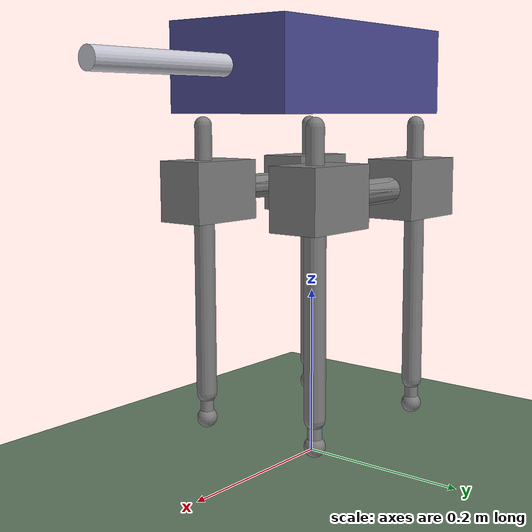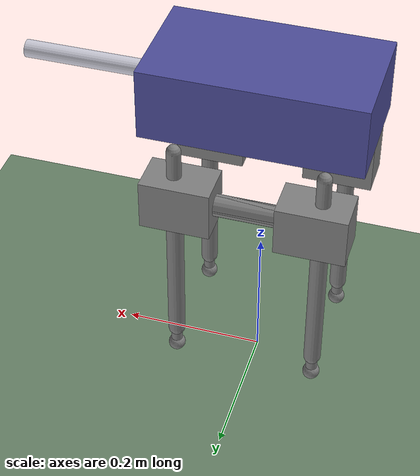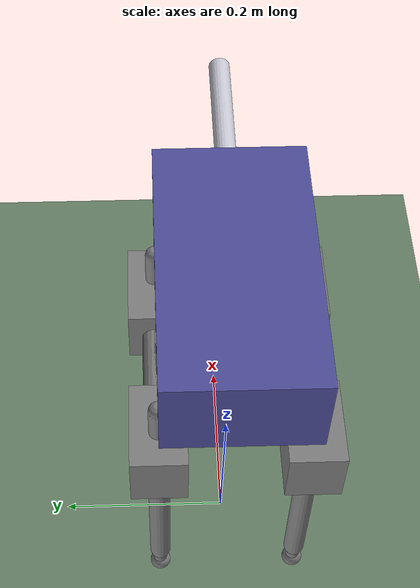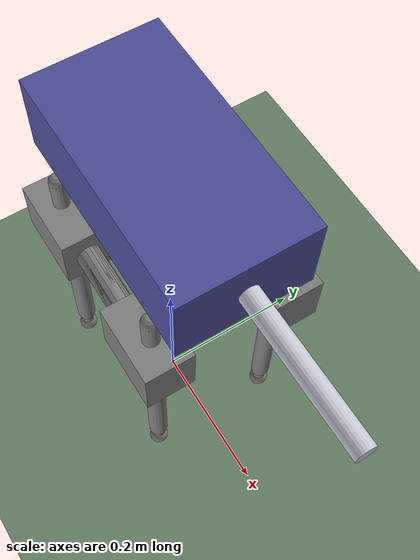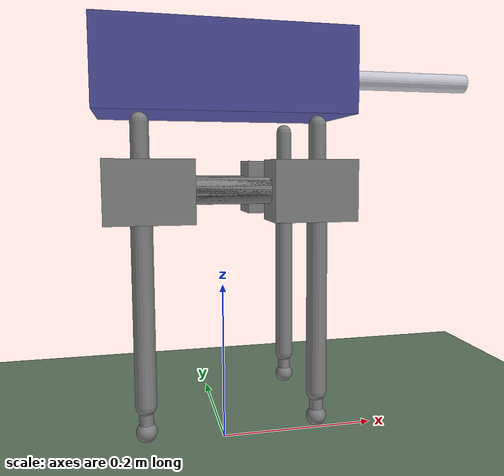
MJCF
<mujoco model="mesh_robot_7_3">
  <compiler angle="radian" autolimits="true"/>
  <option timestep="0.004" integrator="implicitfast"/>
  <default>
    <joint damping="0.02"/>
    <geom friction="1.2 0.1 0.1" contype="1" conaffinity="1"/>
  </default>
  <worldbody>
    <geom name="floor" type="plane" size="0 0 0.1" pos="0 0 0" rgba="0.4 0.5 0.4 1"/>
    <body name="torso" pos="0.0 0.0 0.4602">
      <freejoint name="root"/>
      <!-- torso structure preserves the assembly's placeholder mass distribution;
           four yaw servos are lumped here unless represented by SEA rotor bodies -->
      <geom name="torso" type="box" size="0.14965 0.08065 0.05000"
            mass="0.7912245831062671" rgba="0.3 0.3 0.6 1"/>
      <!-- striker: COSMETIC placeholder, non-colliding, no actuator -->
      <geom name="striker_ph" type="cylinder" pos="0.23965 0 0"
            quat="0.707107 0 0.707107 0" size="0.012 0.09000"
            mass="0.025961229155313355" contype="0" conaffinity="0" rgba="0.8 0.8 0.85 1"/>

    <body name="FL_base_housing" pos="0.099634 0.080669 -0.138029"
          quat="0.707107 0.707107 0.000000 0.000000">
      <joint name="FL_hip_yaw" axis="0 1 0" range="-0.7853982 0.7853982"
             armature="0.09720000000000001" damping="0.08"/>
      <!-- housing+worm+pulley: box spanning yaw pivot to swing pivot (drive_housing bounds) -->
      <geom name="FL_housing" type="box" pos="-0.19084 0 0"
            size="0.04816 0.035 0.030" mass="0.2133828832697548" contype="0" conaffinity="0"/>
      <body name="FL_swing_link" pos="-0.162690 0 0">
        <joint name="FL_leg_swing" axis="0 0 1" range="-0.4363323 0.4363323"
               armature="1.08" frictionloss="4.0"/>
        <!-- swing link: arm capsule pivot->knee (guide rails + drive frame) -->
        <geom name="FL_arm" type="capsule" fromto="0 0 0 0.16269 0 0"
              size="0.015" mass="0.07139338017711173" contype="0" conaffinity="0"/>
        <!-- shin rail: knee station down to the bushing (leg-local -Y) -->
        <geom name="FL_shin" type="capsule"
              fromto="0.16269 0 0 0.16269 -0.2405 0"
              size="0.012" mass="0.13939338017711173" contype="0" conaffinity="0"/>
        <body name="FL_blade_upper" pos="0.162690 0 0">
          <joint name="FL_knee_blade" axis="0 0 1" range="-1.5707963 0.1745329"
                 armature="0.0027"/>
          <!-- blade upper = knee crank, knee pin -> toe hinge (straight strip) -->
          <geom name="FL_bladeU" type="capsule" fromto="0 0 0 0 0.075 0"
                size="0.008" mass="0.012980614577656677" contype="0" conaffinity="0"/>
          <body name="FL_blade_lower" pos="0 0.075 0">
            <joint name="FL_toe_hinge" axis="0 0 1" range="-0.15 0.85"
                   damping="0.1" armature="2e-4"/>
            <!-- blade lower = conrod, toe hinge -> heel ear (curved plates -> capsule);
                 COLLIDES: it is the strike face -->
            <geom name="FL_bladeL" type="capsule" fromto="0 0 0 0 -0.1 0"
                  size="0.010" mass="0.01817286040871935"/>
          </body>
        </body>
        <!-- pushrod: prismatic on the shin (bushing); body origin = heel point at s=0 -->
        <body name="FL_pushrod" pos="0.162690 -0.025 0">
          <joint name="FL_pushrod_slide" type="slide" axis="0 1 0"
                 range="-0.04314 0.005" damping="0.3" armature="2e-4"/>
          <geom name="FL_rod" type="capsule" fromto="0 0 0 0 -0.24600 0"
                size="0.008" mass="0.016615186659400545"/>
          <geom name="FL_foot" type="sphere" pos="0 -0.24600 0"
                size="0.012" mass="0.004153796664850136"/>
        </body>
      </body>
    </body>
    <body name="FR_base_housing" pos="0.099634 -0.080669 -0.138029"
          quat="0.707107 0.707107 0.000000 0.000000">
      <joint name="FR_hip_yaw" axis="0 1 0" range="-0.7853982 0.7853982"
             armature="0.09720000000000001" damping="0.08"/>
      <!-- housing+worm+pulley: box spanning yaw pivot to swing pivot (drive_housing bounds) -->
      <geom name="FR_housing" type="box" pos="-0.19084 0 0"
            size="0.04816 0.035 0.030" mass="0.2133828832697548" contype="0" conaffinity="0"/>
      <body name="FR_swing_link" pos="-0.162690 0 0">
        <joint name="FR_leg_swing" axis="0 0 1" range="-0.4363323 0.4363323"
               armature="1.08" frictionloss="4.0"/>
        <!-- swing link: arm capsule pivot->knee (guide rails + drive frame) -->
        <geom name="FR_arm" type="capsule" fromto="0 0 0 0.16269 0 0"
              size="0.015" mass="0.07139338017711173" contype="0" conaffinity="0"/>
        <!-- shin rail: knee station down to the bushing (leg-local -Y) -->
        <geom name="FR_shin" type="capsule"
              fromto="0.16269 0 0 0.16269 -0.2405 0"
              size="0.012" mass="0.13939338017711173" contype="0" conaffinity="0"/>
        <body name="FR_blade_upper" pos="0.162690 0 0">
          <joint name="FR_knee_blade" axis="0 0 1" range="-1.5707963 0.1745329"
                 armature="0.0027"/>
          <!-- blade upper = knee crank, knee pin -> toe hinge (straight strip) -->
          <geom name="FR_bladeU" type="capsule" fromto="0 0 0 0 0.075 0"
                size="0.008" mass="0.012980614577656677" contype="0" conaffinity="0"/>
          <body name="FR_blade_lower" pos="0 0.075 0">
            <joint name="FR_toe_hinge" axis="0 0 1" range="-0.15 0.85"
                   damping="0.1" armature="2e-4"/>
            <!-- blade lower = conrod, toe hinge -> heel ear (curved plates -> capsule);
                 COLLIDES: it is the strike face -->
            <geom name="FR_bladeL" type="capsule" fromto="0 0 0 0 -0.1 0"
                  size="0.010" mass="0.01817286040871935"/>
          </body>
        </body>
        <!-- pushrod: prismatic on the shin (bushing); body origin = heel point at s=0 -->
        <body name="FR_pushrod" pos="0.162690 -0.025 0">
          <joint name="FR_pushrod_slide" type="slide" axis="0 1 0"
                 range="-0.04314 0.005" damping="0.3" armature="2e-4"/>
          <geom name="FR_rod" type="capsule" fromto="0 0 0 0 -0.24600 0"
                size="0.008" mass="0.016615186659400545"/>
          <geom name="FR_foot" type="sphere" pos="0 -0.24600 0"
                size="0.012" mass="0.004153796664850136"/>
        </body>
      </body>
    </body>
    <body name="RL_base_housing" pos="-0.099634 0.080669 -0.138029"
          quat="0.000000 0.000000 0.707107 0.707107">
      <joint name="RL_hip_yaw" axis="0 1 0" range="-0.7853982 0.7853982"
             armature="0.09720000000000001" damping="0.08"/>
      <!-- housing+worm+pulley: box spanning yaw pivot to swing pivot (drive_housing bounds) -->
      <geom name="RL_housing" type="box" pos="-0.19084 0 0"
            size="0.04816 0.035 0.030" mass="0.2133828832697548" contype="0" conaffinity="0"/>
      <body name="RL_swing_link" pos="-0.162690 0 0">
        <joint name="RL_leg_swing" axis="0 0 1" range="-0.4363323 0.4363323"
               armature="1.08" frictionloss="4.0"/>
        <!-- swing link: arm capsule pivot->knee (guide rails + drive frame) -->
        <geom name="RL_arm" type="capsule" fromto="0 0 0 0.16269 0 0"
              size="0.015" mass="0.07139338017711173" contype="0" conaffinity="0"/>
        <!-- shin rail: knee station down to the bushing (leg-local -Y) -->
        <geom name="RL_shin" type="capsule"
              fromto="0.16269 0 0 0.16269 -0.2405 0"
              size="0.012" mass="0.13939338017711173" contype="0" conaffinity="0"/>
        <body name="RL_blade_upper" pos="0.162690 0 0">
          <joint name="RL_knee_blade" axis="0 0 1" range="-1.5707963 0.1745329"
                 armature="0.0027"/>
          <!-- blade upper = knee crank, knee pin -> toe hinge (straight strip) -->
          <geom name="RL_bladeU" type="capsule" fromto="0 0 0 0 0.075 0"
                size="0.008" mass="0.012980614577656677" contype="0" conaffinity="0"/>
          <body name="RL_blade_lower" pos="0 0.075 0">
            <joint name="RL_toe_hinge" axis="0 0 1" range="-0.15 0.85"
                   damping="0.1" armature="2e-4"/>
            <!-- blade lower = conrod, toe hinge -> heel ear (curved plates -> capsule);
                 COLLIDES: it is the strike face -->
            <geom name="RL_bladeL" type="capsule" fromto="0 0 0 0 -0.1 0"
                  size="0.010" mass="0.01817286040871935"/>
          </body>
        </body>
        <!-- pushrod: prismatic on the shin (bushing); body origin = heel point at s=0 -->
        <body name="RL_pushrod" pos="0.162690 -0.025 0">
          <joint name="RL_pushrod_slide" type="slide" axis="0 1 0"
                 range="-0.04314 0.005" damping="0.3" armature="2e-4"/>
          <geom name="RL_rod" type="capsule" fromto="0 0 0 0 -0.24600 0"
                size="0.008" mass="0.016615186659400545"/>
          <geom name="RL_foot" type="sphere" pos="0 -0.24600 0"
                size="0.012" mass="0.004153796664850136"/>
        </body>
      </body>
    </body>
    <body name="RR_base_housing" pos="-0.099634 -0.080669 -0.138029"
          quat="0.000000 0.000000 0.707107 0.707107">
      <joint name="RR_hip_yaw" axis="0 1 0" range="-0.7853982 0.7853982"
             armature="0.09720000000000001" damping="0.08"/>
      <!-- housing+worm+pulley: box spanning yaw pivot to swing pivot (drive_housing bounds) -->
      <geom name="RR_housing" type="box" pos="-0.19084 0 0"
            size="0.04816 0.035 0.030" mass="0.2133828832697548" contype="0" conaffinity="0"/>
      <body name="RR_swing_link" pos="-0.162690 0 0">
        <joint name="RR_leg_swing" axis="0 0 1" range="-0.4363323 0.4363323"
               armature="1.08" frictionloss="4.0"/>
        <!-- swing link: arm capsule pivot->knee (guide rails + drive frame) -->
        <geom name="RR_arm" type="capsule" fromto="0 0 0 0.16269 0 0"
              size="0.015" mass="0.07139338017711173" contype="0" conaffinity="0"/>
        <!-- shin rail: knee station down to the bushing (leg-local -Y) -->
        <geom name="RR_shin" type="capsule"
              fromto="0.16269 0 0 0.16269 -0.2405 0"
              size="0.012" mass="0.13939338017711173" contype="0" conaffinity="0"/>
        <body name="RR_blade_upper" pos="0.162690 0 0">
          <joint name="RR_knee_blade" axis="0 0 1" range="-1.5707963 0.1745329"
                 armature="0.0027"/>
          <!-- blade upper = knee crank, knee pin -> toe hinge (straight strip) -->
          <geom name="RR_bladeU" type="capsule" fromto="0 0 0 0 0.075 0"
                size="0.008" mass="0.012980614577656677" contype="0" conaffinity="0"/>
          <body name="RR_blade_lower" pos="0 0.075 0">
            <joint name="RR_toe_hinge" axis="0 0 1" range="-0.15 0.85"
                   damping="0.1" armature="2e-4"/>
            <!-- blade lower = conrod, toe hinge -> heel ear (curved plates -> capsule);
                 COLLIDES: it is the strike face -->
            <geom name="RR_bladeL" type="capsule" fromto="0 0 0 0 -0.1 0"
                  size="0.010" mass="0.01817286040871935"/>
          </body>
        </body>
        <!-- pushrod: prismatic on the shin (bushing); body origin = heel point at s=0 -->
        <body name="RR_pushrod" pos="0.162690 -0.025 0">
          <joint name="RR_pushrod_slide" type="slide" axis="0 1 0"
                 range="-0.04314 0.005" damping="0.3" armature="2e-4"/>
          <geom name="RR_rod" type="capsule" fromto="0 0 0 0 -0.24600 0"
                size="0.008" mass="0.016615186659400545"/>
          <geom name="RR_foot" type="sphere" pos="0 -0.24600 0"
                size="0.012" mass="0.004153796664850136"/>
        </body>
      </body>
    </body>
    </body>
  </worldbody>
  <contact>
    <exclude body1="FL_blade_lower" body2="FL_pushrod"/>
    <exclude body1="FL_blade_upper" body2="FL_pushrod"/>
    <exclude body1="FR_blade_lower" body2="FR_pushrod"/>
    <exclude body1="FR_blade_upper" body2="FR_pushrod"/>
    <exclude body1="RL_blade_lower" body2="RL_pushrod"/>
    <exclude body1="RL_blade_upper" body2="RL_pushrod"/>
    <exclude body1="RR_blade_lower" body2="RR_pushrod"/>
    <exclude body1="RR_blade_upper" body2="RR_pushrod"/>
  </contact>
  <equality>
    <joint name="FL_loop_slide" joint1="FL_pushrod_slide" joint2="FL_knee_blade"
           solref="0.008 1" solimp="0.95 0.9999 0.001"
           polycoef="-3.6190971468416207e-07 5.9667135081980903e-05 -0.0093727627312819219 -0.00089767508597355826 -0.0035344926044686312"/>
    <joint name="FL_loop_toe" joint1="FL_toe_hinge" joint2="FL_knee_blade"
           solref="0.008 1" solimp="0.95 0.9999 0.001"
           polycoef="-4.03533236248937e-05 -0.24996724245461091 0.010899111310994329 -0.017418171651122527 0.038797380584494862"/>
    <joint name="FR_loop_slide" joint1="FR_pushrod_slide" joint2="FR_knee_blade"
           solref="0.008 1" solimp="0.95 0.9999 0.001"
           polycoef="-3.6190971468416207e-07 5.9667135081980903e-05 -0.0093727627312819219 -0.00089767508597355826 -0.0035344926044686312"/>
    <joint name="FR_loop_toe" joint1="FR_toe_hinge" joint2="FR_knee_blade"
           solref="0.008 1" solimp="0.95 0.9999 0.001"
           polycoef="-4.03533236248937e-05 -0.24996724245461091 0.010899111310994329 -0.017418171651122527 0.038797380584494862"/>
    <joint name="RL_loop_slide" joint1="RL_pushrod_slide" joint2="RL_knee_blade"
           solref="0.008 1" solimp="0.95 0.9999 0.001"
           polycoef="-3.6190971468416207e-07 5.9667135081980903e-05 -0.0093727627312819219 -0.00089767508597355826 -0.0035344926044686312"/>
    <joint name="RL_loop_toe" joint1="RL_toe_hinge" joint2="RL_knee_blade"
           solref="0.008 1" solimp="0.95 0.9999 0.001"
           polycoef="-4.03533236248937e-05 -0.24996724245461091 0.010899111310994329 -0.017418171651122527 0.038797380584494862"/>
    <joint name="RR_loop_slide" joint1="RR_pushrod_slide" joint2="RR_knee_blade"
           solref="0.008 1" solimp="0.95 0.9999 0.001"
           polycoef="-3.6190971468416207e-07 5.9667135081980903e-05 -0.0093727627312819219 -0.00089767508597355826 -0.0035344926044686312"/>
    <joint name="RR_loop_toe" joint1="RR_toe_hinge" joint2="RR_knee_blade"
           solref="0.008 1" solimp="0.95 0.9999 0.001"
           polycoef="-4.03533236248937e-05 -0.24996724245461091 0.010899111310994329 -0.017418171651122527 0.038797380584494862"/>
  </equality>
  <actuator>
    <motor name="FL_yaw_m" joint="FL_hip_yaw" gear="11.77" ctrlrange="-1 1"
           forcerange="-11.77 11.77"/>
    <motor name="FL_swing_m" joint="FL_leg_swing" gear="39.23" ctrlrange="-1 1"
           forcerange="-39.23 39.23"/>
    <motor name="FL_knee_m" joint="FL_knee_blade" gear="1.961" ctrlrange="-1 1"
           forcerange="-1.961 1.961"/>
    <motor name="FR_yaw_m" joint="FR_hip_yaw" gear="11.77" ctrlrange="-1 1"
           forcerange="-11.77 11.77"/>
    <motor name="FR_swing_m" joint="FR_leg_swing" gear="39.23" ctrlrange="-1 1"
           forcerange="-39.23 39.23"/>
    <motor name="FR_knee_m" joint="FR_knee_blade" gear="1.961" ctrlrange="-1 1"
           forcerange="-1.961 1.961"/>
    <motor name="RL_yaw_m" joint="RL_hip_yaw" gear="11.77" ctrlrange="-1 1"
           forcerange="-11.77 11.77"/>
    <motor name="RL_swing_m" joint="RL_leg_swing" gear="39.23" ctrlrange="-1 1"
           forcerange="-39.23 39.23"/>
    <motor name="RL_knee_m" joint="RL_knee_blade" gear="1.961" ctrlrange="-1 1"
           forcerange="-1.961 1.961"/>
    <motor name="RR_yaw_m" joint="RR_hip_yaw" gear="11.77" ctrlrange="-1 1"
           forcerange="-11.77 11.77"/>
    <motor name="RR_swing_m" joint="RR_leg_swing" gear="39.23" ctrlrange="-1 1"
           forcerange="-39.23 39.23"/>
    <motor name="RR_knee_m" joint="RR_knee_blade" gear="1.961" ctrlrange="-1 1"
           forcerange="-1.961 1.961"/>
  </actuator>
</mujoco>
